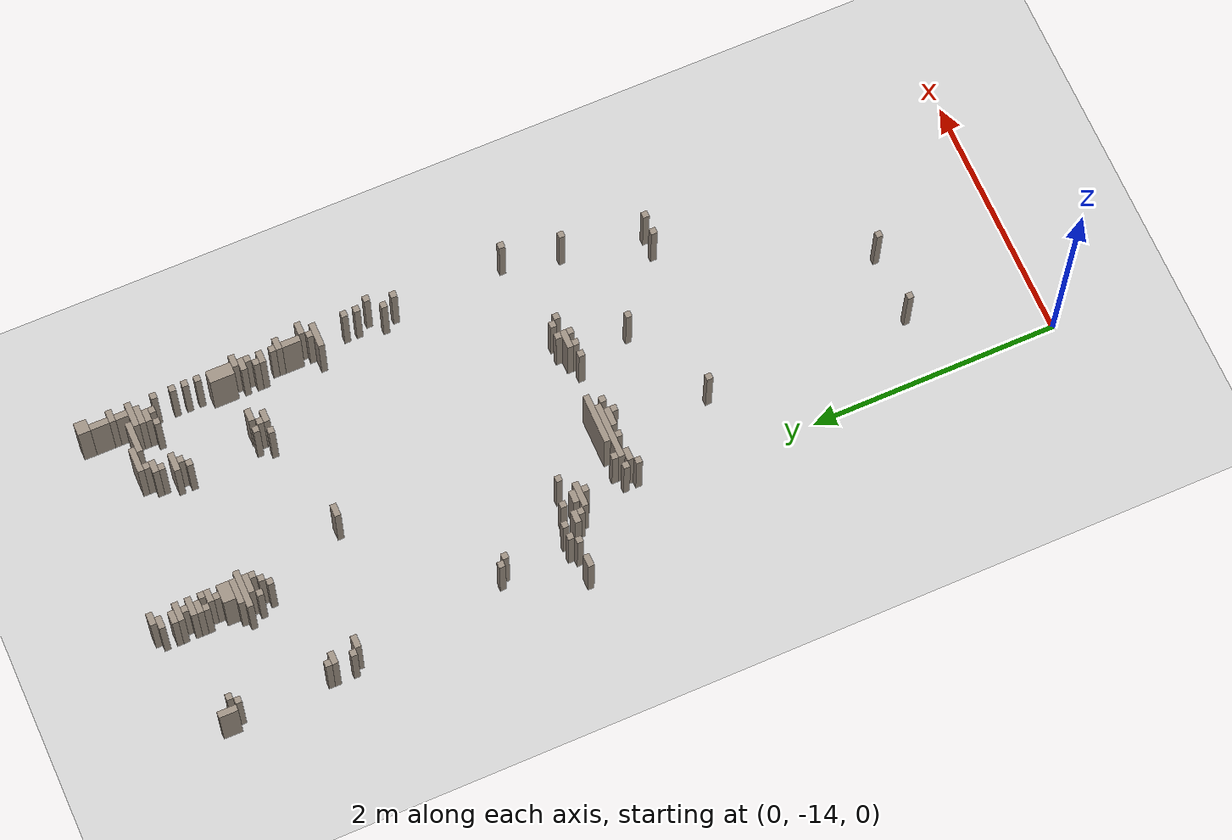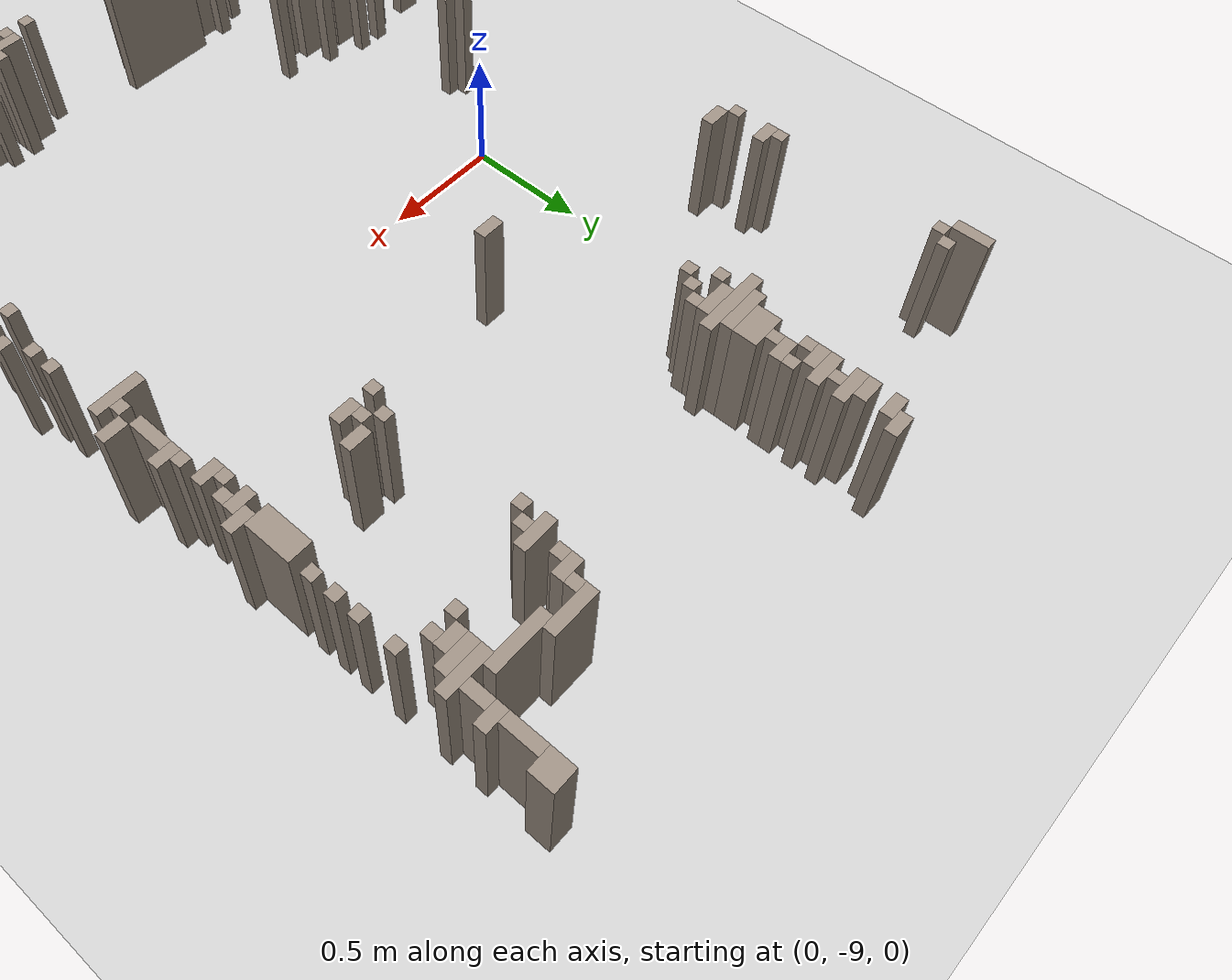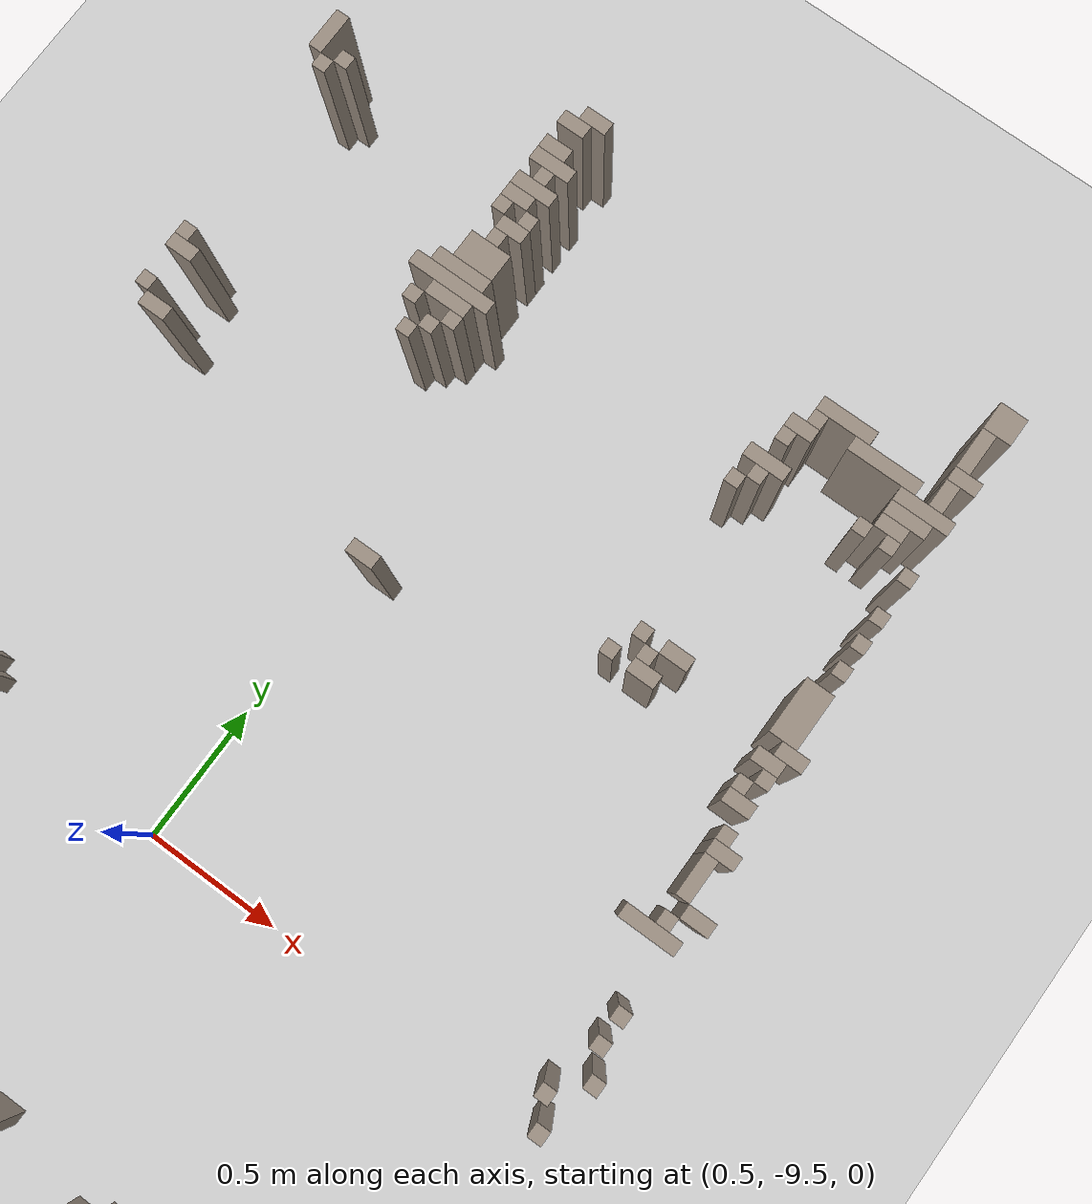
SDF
<sdf version="1.8">
 <world name="sala_real">
  <model name="ground_plane">
   <static>true</static>
   <link name="link">
    <collision name="col">
     <geometry><plane><normal>0 0 1</normal><size>100 100</size></plane></geometry>
    </collision>
    <visual name="vis">
     <geometry><plane><normal>0 0 1</normal><size>100 100</size></plane></geometry>
     <material><ambient>0.8 0.8 0.8 1</ambient><diffuse>0.8 0.8 0.8 1</diffuse></material>
    </visual>
   </link>
  </model>
  <model name="wall_442">
   <static>true</static>
   <pose>0.315 -6.888 0.250 0 0 0</pose>
   <link name="link">
    <collision name="col"><geometry><box><size>0.100 0.050 0.500</size></box></geometry></collision>
    <visual name="vis">
     <geometry><box><size>0.100 0.050 0.500</size></box></geometry>
     <material><ambient>0.6 0.55 0.5 1</ambient><diffuse>0.6 0.55 0.5 1</diffuse></material>
    </visual>
   </link>
  </model>
  <model name="wall_448">
   <static>true</static>
   <pose>0.340 -7.038 0.250 0 0 0</pose>
   <link name="link">
    <collision name="col"><geometry><box><size>0.150 0.050 0.500</size></box></geometry></collision>
    <visual name="vis">
     <geometry><box><size>0.150 0.050 0.500</size></box></geometry>
     <material><ambient>0.6 0.55 0.5 1</ambient><diffuse>0.6 0.55 0.5 1</diffuse></material>
    </visual>
   </link>
  </model>
  <model name="wall_449">
   <static>true</static>
   <pose>1.965 -6.913 0.250 0 0 0</pose>
   <link name="link">
    <collision name="col"><geometry><box><size>0.100 0.100 0.500</size></box></geometry></collision>
    <visual name="vis">
     <geometry><box><size>0.100 0.100 0.500</size></box></geometry>
     <material><ambient>0.6 0.55 0.5 1</ambient><diffuse>0.6 0.55 0.5 1</diffuse></material>
    </visual>
   </link>
  </model>
  <model name="wall_451">
   <static>true</static>
   <pose>0.315 -6.988 0.250 0 0 0</pose>
   <link name="link">
    <collision name="col"><geometry><box><size>0.100 0.050 0.500</size></box></geometry></collision>
    <visual name="vis">
     <geometry><box><size>0.100 0.050 0.500</size></box></geometry>
     <material><ambient>0.6 0.55 0.5 1</ambient><diffuse>0.6 0.55 0.5 1</diffuse></material>
    </visual>
   </link>
  </model>
  <model name="wall_452">
   <static>true</static>
   <pose>1.940 -7.038 0.250 0 0 0</pose>
   <link name="link">
    <collision name="col"><geometry><box><size>0.050 0.150 0.500</size></box></geometry></collision>
    <visual name="vis">
     <geometry><box><size>0.050 0.150 0.500</size></box></geometry>
     <material><ambient>0.6 0.55 0.5 1</ambient><diffuse>0.6 0.55 0.5 1</diffuse></material>
    </visual>
   </link>
  </model>
  <model name="wall_458">
   <static>true</static>
   <pose>0.365 -6.838 0.250 0 0 0</pose>
   <link name="link">
    <collision name="col"><geometry><box><size>0.100 0.050 0.500</size></box></geometry></collision>
    <visual name="vis">
     <geometry><box><size>0.100 0.050 0.500</size></box></geometry>
     <material><ambient>0.6 0.55 0.5 1</ambient><diffuse>0.6 0.55 0.5 1</diffuse></material>
    </visual>
   </link>
  </model>
  <model name="wall_461">
   <static>true</static>
   <pose>0.340 -7.088 0.250 0 0 0</pose>
   <link name="link">
    <collision name="col"><geometry><box><size>0.050 0.050 0.500</size></box></geometry></collision>
    <visual name="vis">
     <geometry><box><size>0.050 0.050 0.500</size></box></geometry>
     <material><ambient>0.6 0.55 0.5 1</ambient><diffuse>0.6 0.55 0.5 1</diffuse></material>
    </visual>
   </link>
  </model>
  <model name="wall_463">
   <static>true</static>
   <pose>0.340 -7.138 0.250 0 0 0</pose>
   <link name="link">
    <collision name="col"><geometry><box><size>0.150 0.050 0.500</size></box></geometry></collision>
    <visual name="vis">
     <geometry><box><size>0.150 0.050 0.500</size></box></geometry>
     <material><ambient>0.6 0.55 0.5 1</ambient><diffuse>0.6 0.55 0.5 1</diffuse></material>
    </visual>
   </link>
  </model>
  <model name="wall_468">
   <static>true</static>
   <pose>1.440 -7.338 0.250 0 0 0</pose>
   <link name="link">
    <collision name="col"><geometry><box><size>0.050 0.050 0.500</size></box></geometry></collision>
    <visual name="vis">
     <geometry><box><size>0.050 0.050 0.500</size></box></geometry>
     <material><ambient>0.6 0.55 0.5 1</ambient><diffuse>0.6 0.55 0.5 1</diffuse></material>
    </visual>
   </link>
  </model>
  <model name="wall_473">
   <static>true</static>
   <pose>0.340 -7.413 0.250 0 0 0</pose>
   <link name="link">
    <collision name="col"><geometry><box><size>0.150 0.100 0.500</size></box></geometry></collision>
    <visual name="vis">
     <geometry><box><size>0.150 0.100 0.500</size></box></geometry>
     <material><ambient>0.6 0.55 0.5 1</ambient><diffuse>0.6 0.55 0.5 1</diffuse></material>
    </visual>
   </link>
  </model>
  <model name="wall_476">
   <static>true</static>
   <pose>0.390 -7.238 0.250 0 0 0</pose>
   <link name="link">
    <collision name="col"><geometry><box><size>0.050 0.050 0.500</size></box></geometry></collision>
    <visual name="vis">
     <geometry><box><size>0.050 0.050 0.500</size></box></geometry>
     <material><ambient>0.6 0.55 0.5 1</ambient><diffuse>0.6 0.55 0.5 1</diffuse></material>
    </visual>
   </link>
  </model>
  <model name="wall_477">
   <static>true</static>
   <pose>1.990 -7.488 0.250 0 0 0</pose>
   <link name="link">
    <collision name="col"><geometry><box><size>0.050 0.050 0.500</size></box></geometry></collision>
    <visual name="vis">
     <geometry><box><size>0.050 0.050 0.500</size></box></geometry>
     <material><ambient>0.6 0.55 0.5 1</ambient><diffuse>0.6 0.55 0.5 1</diffuse></material>
    </visual>
   </link>
  </model>
  <model name="wall_479">
   <static>true</static>
   <pose>0.340 -7.338 0.250 0 0 0</pose>
   <link name="link">
    <collision name="col"><geometry><box><size>0.050 0.050 0.500</size></box></geometry></collision>
    <visual name="vis">
     <geometry><box><size>0.050 0.050 0.500</size></box></geometry>
     <material><ambient>0.6 0.55 0.5 1</ambient><diffuse>0.6 0.55 0.5 1</diffuse></material>
    </visual>
   </link>
  </model>
  <model name="wall_482">
   <static>true</static>
   <pose>0.290 -7.238 0.250 0 0 0</pose>
   <link name="link">
    <collision name="col"><geometry><box><size>0.050 0.050 0.500</size></box></geometry></collision>
    <visual name="vis">
     <geometry><box><size>0.050 0.050 0.500</size></box></geometry>
     <material><ambient>0.6 0.55 0.5 1</ambient><diffuse>0.6 0.55 0.5 1</diffuse></material>
    </visual>
   </link>
  </model>
  <model name="wall_483">
   <static>true</static>
   <pose>1.990 -7.638 0.250 0 0 0</pose>
   <link name="link">
    <collision name="col"><geometry><box><size>0.050 0.050 0.500</size></box></geometry></collision>
    <visual name="vis">
     <geometry><box><size>0.050 0.050 0.500</size></box></geometry>
     <material><ambient>0.6 0.55 0.5 1</ambient><diffuse>0.6 0.55 0.5 1</diffuse></material>
    </visual>
   </link>
  </model>
  <model name="wall_491">
   <static>true</static>
   <pose>1.990 -7.738 0.250 0 0 0</pose>
   <link name="link">
    <collision name="col"><geometry><box><size>0.050 0.050 0.500</size></box></geometry></collision>
    <visual name="vis">
     <geometry><box><size>0.050 0.050 0.500</size></box></geometry>
     <material><ambient>0.6 0.55 0.5 1</ambient><diffuse>0.6 0.55 0.5 1</diffuse></material>
    </visual>
   </link>
  </model>
  <model name="wall_500">
   <static>true</static>
   <pose>-0.460 -7.188 0.250 0 0 0</pose>
   <link name="link">
    <collision name="col"><geometry><box><size>0.050 0.050 0.500</size></box></geometry></collision>
    <visual name="vis">
     <geometry><box><size>0.050 0.050 0.500</size></box></geometry>
     <material><ambient>0.6 0.55 0.5 1</ambient><diffuse>0.6 0.55 0.5 1</diffuse></material>
    </visual>
   </link>
  </model>
  <model name="wall_504">
   <static>true</static>
   <pose>1.965 -7.138 0.250 0 0 0</pose>
   <link name="link">
    <collision name="col"><geometry><box><size>0.100 0.050 0.500</size></box></geometry></collision>
    <visual name="vis">
     <geometry><box><size>0.100 0.050 0.500</size></box></geometry>
     <material><ambient>0.6 0.55 0.5 1</ambient><diffuse>0.6 0.55 0.5 1</diffuse></material>
    </visual>
   </link>
  </model>
  <model name="wall_510">
   <static>true</static>
   <pose>-0.460 -7.888 0.250 0 0 0</pose>
   <link name="link">
    <collision name="col"><geometry><box><size>0.050 0.050 0.500</size></box></geometry></collision>
    <visual name="vis">
     <geometry><box><size>0.050 0.050 0.500</size></box></geometry>
     <material><ambient>0.6 0.55 0.5 1</ambient><diffuse>0.6 0.55 0.5 1</diffuse></material>
    </visual>
   </link>
  </model>
  <model name="wall_511">
   <static>true</static>
   <pose>1.440 -7.488 0.250 0 0 0</pose>
   <link name="link">
    <collision name="col"><geometry><box><size>0.050 0.050 0.500</size></box></geometry></collision>
    <visual name="vis">
     <geometry><box><size>0.050 0.050 0.500</size></box></geometry>
     <material><ambient>0.6 0.55 0.5 1</ambient><diffuse>0.6 0.55 0.5 1</diffuse></material>
    </visual>
   </link>
  </model>
  <model name="wall_513">
   <static>true</static>
   <pose>1.490 -7.238 0.250 0 0 0</pose>
   <link name="link">
    <collision name="col"><geometry><box><size>0.050 0.050 0.500</size></box></geometry></collision>
    <visual name="vis">
     <geometry><box><size>0.050 0.050 0.500</size></box></geometry>
     <material><ambient>0.6 0.55 0.5 1</ambient><diffuse>0.6 0.55 0.5 1</diffuse></material>
    </visual>
   </link>
  </model>
  <model name="wall_517">
   <static>true</static>
   <pose>1.390 -7.538 0.250 0 0 0</pose>
   <link name="link">
    <collision name="col"><geometry><box><size>0.050 0.050 0.500</size></box></geometry></collision>
    <visual name="vis">
     <geometry><box><size>0.050 0.050 0.500</size></box></geometry>
     <material><ambient>0.6 0.55 0.5 1</ambient><diffuse>0.6 0.55 0.5 1</diffuse></material>
    </visual>
   </link>
  </model>
  <model name="wall_519">
   <static>true</static>
   <pose>1.965 -8.013 0.250 0 0 0</pose>
   <link name="link">
    <collision name="col"><geometry><box><size>0.100 0.200 0.500</size></box></geometry></collision>
    <visual name="vis">
     <geometry><box><size>0.100 0.200 0.500</size></box></geometry>
     <material><ambient>0.6 0.55 0.5 1</ambient><diffuse>0.6 0.55 0.5 1</diffuse></material>
    </visual>
   </link>
  </model>
  <model name="wall_521">
   <static>true</static>
   <pose>1.990 -7.838 0.250 0 0 0</pose>
   <link name="link">
    <collision name="col"><geometry><box><size>0.050 0.050 0.500</size></box></geometry></collision>
    <visual name="vis">
     <geometry><box><size>0.050 0.050 0.500</size></box></geometry>
     <material><ambient>0.6 0.55 0.5 1</ambient><diffuse>0.6 0.55 0.5 1</diffuse></material>
    </visual>
   </link>
  </model>
  <model name="wall_523">
   <static>true</static>
   <pose>1.940 -7.213 0.250 0 0 0</pose>
   <link name="link">
    <collision name="col"><geometry><box><size>0.050 0.100 0.500</size></box></geometry></collision>
    <visual name="vis">
     <geometry><box><size>0.050 0.100 0.500</size></box></geometry>
     <material><ambient>0.6 0.55 0.5 1</ambient><diffuse>0.6 0.55 0.5 1</diffuse></material>
    </visual>
   </link>
  </model>
  <model name="wall_525">
   <static>true</static>
   <pose>1.965 -8.188 0.250 0 0 0</pose>
   <link name="link">
    <collision name="col"><geometry><box><size>0.100 0.050 0.500</size></box></geometry></collision>
    <visual name="vis">
     <geometry><box><size>0.100 0.050 0.500</size></box></geometry>
     <material><ambient>0.6 0.55 0.5 1</ambient><diffuse>0.6 0.55 0.5 1</diffuse></material>
    </visual>
   </link>
  </model>
  <model name="wall_530">
   <static>true</static>
   <pose>1.990 -8.238 0.250 0 0 0</pose>
   <link name="link">
    <collision name="col"><geometry><box><size>0.050 0.050 0.500</size></box></geometry></collision>
    <visual name="vis">
     <geometry><box><size>0.050 0.050 0.500</size></box></geometry>
     <material><ambient>0.6 0.55 0.5 1</ambient><diffuse>0.6 0.55 0.5 1</diffuse></material>
    </visual>
   </link>
  </model>
  <model name="wall_534">
   <static>true</static>
   <pose>2.015 -8.138 0.250 0 0 0</pose>
   <link name="link">
    <collision name="col"><geometry><box><size>0.100 0.050 0.500</size></box></geometry></collision>
    <visual name="vis">
     <geometry><box><size>0.100 0.050 0.500</size></box></geometry>
     <material><ambient>0.6 0.55 0.5 1</ambient><diffuse>0.6 0.55 0.5 1</diffuse></material>
    </visual>
   </link>
  </model>
  <model name="wall_536">
   <static>true</static>
   <pose>1.990 -8.438 0.250 0 0 0</pose>
   <link name="link">
    <collision name="col"><geometry><box><size>0.050 0.050 0.500</size></box></geometry></collision>
    <visual name="vis">
     <geometry><box><size>0.050 0.050 0.500</size></box></geometry>
     <material><ambient>0.6 0.55 0.5 1</ambient><diffuse>0.6 0.55 0.5 1</diffuse></material>
    </visual>
   </link>
  </model>
  <model name="wall_544">
   <static>true</static>
   <pose>1.990 -8.588 0.250 0 0 0</pose>
   <link name="link">
    <collision name="col"><geometry><box><size>0.050 0.150 0.500</size></box></geometry></collision>
    <visual name="vis">
     <geometry><box><size>0.050 0.150 0.500</size></box></geometry>
     <material><ambient>0.6 0.55 0.5 1</ambient><diffuse>0.6 0.55 0.5 1</diffuse></material>
    </visual>
   </link>
  </model>
  <model name="wall_552">
   <static>true</static>
   <pose>2.040 -9.038 0.250 0 0 0</pose>
   <link name="link">
    <collision name="col"><geometry><box><size>0.050 0.050 0.500</size></box></geometry></collision>
    <visual name="vis">
     <geometry><box><size>0.050 0.050 0.500</size></box></geometry>
     <material><ambient>0.6 0.55 0.5 1</ambient><diffuse>0.6 0.55 0.5 1</diffuse></material>
    </visual>
   </link>
  </model>
  <model name="wall_557">
   <static>true</static>
   <pose>1.990 -8.738 0.250 0 0 0</pose>
   <link name="link">
    <collision name="col"><geometry><box><size>0.050 0.050 0.500</size></box></geometry></collision>
    <visual name="vis">
     <geometry><box><size>0.050 0.050 0.500</size></box></geometry>
     <material><ambient>0.6 0.55 0.5 1</ambient><diffuse>0.6 0.55 0.5 1</diffuse></material>
    </visual>
   </link>
  </model>
  <model name="wall_558">
   <static>true</static>
   <pose>2.040 -9.138 0.250 0 0 0</pose>
   <link name="link">
    <collision name="col"><geometry><box><size>0.050 0.050 0.500</size></box></geometry></collision>
    <visual name="vis">
     <geometry><box><size>0.050 0.050 0.500</size></box></geometry>
     <material><ambient>0.6 0.55 0.5 1</ambient><diffuse>0.6 0.55 0.5 1</diffuse></material>
    </visual>
   </link>
  </model>
  <model name="wall_559">
   <static>true</static>
   <pose>-0.260 -9.338 0.250 0 0 0</pose>
   <link name="link">
    <collision name="col"><geometry><box><size>0.050 0.050 0.500</size></box></geometry></collision>
    <visual name="vis">
     <geometry><box><size>0.050 0.050 0.500</size></box></geometry>
     <material><ambient>0.6 0.55 0.5 1</ambient><diffuse>0.6 0.55 0.5 1</diffuse></material>
    </visual>
   </link>
  </model>
  <model name="wall_573">
   <static>true</static>
   <pose>2.090 -9.238 0.250 0 0 0</pose>
   <link name="link">
    <collision name="col"><geometry><box><size>0.050 0.050 0.500</size></box></geometry></collision>
    <visual name="vis">
     <geometry><box><size>0.050 0.050 0.500</size></box></geometry>
     <material><ambient>0.6 0.55 0.5 1</ambient><diffuse>0.6 0.55 0.5 1</diffuse></material>
    </visual>
   </link>
  </model>
  <model name="wall_575">
   <static>true</static>
   <pose>0.190 -9.988 0.250 0 0 0</pose>
   <link name="link">
    <collision name="col"><geometry><box><size>0.050 0.050 0.500</size></box></geometry></collision>
    <visual name="vis">
     <geometry><box><size>0.050 0.050 0.500</size></box></geometry>
     <material><ambient>0.6 0.55 0.5 1</ambient><diffuse>0.6 0.55 0.5 1</diffuse></material>
    </visual>
   </link>
  </model>
  <model name="wall_578">
   <static>true</static>
   <pose>1.390 -8.188 0.250 0 0 0</pose>
   <link name="link">
    <collision name="col"><geometry><box><size>0.050 0.050 0.500</size></box></geometry></collision>
    <visual name="vis">
     <geometry><box><size>0.050 0.050 0.500</size></box></geometry>
     <material><ambient>0.6 0.55 0.5 1</ambient><diffuse>0.6 0.55 0.5 1</diffuse></material>
    </visual>
   </link>
  </model>
  <model name="wall_582">
   <static>true</static>
   <pose>0.340 -7.688 0.250 0 0 0</pose>
   <link name="link">
    <collision name="col"><geometry><box><size>0.050 0.050 0.500</size></box></geometry></collision>
    <visual name="vis">
     <geometry><box><size>0.050 0.050 0.500</size></box></geometry>
     <material><ambient>0.6 0.55 0.5 1</ambient><diffuse>0.6 0.55 0.5 1</diffuse></material>
    </visual>
   </link>
  </model>
  <model name="wall_585">
   <static>true</static>
   <pose>1.240 -10.438 0.250 0 0 0</pose>
   <link name="link">
    <collision name="col"><geometry><box><size>0.050 0.050 0.500</size></box></geometry></collision>
    <visual name="vis">
     <geometry><box><size>0.050 0.050 0.500</size></box></geometry>
     <material><ambient>0.6 0.55 0.5 1</ambient><diffuse>0.6 0.55 0.5 1</diffuse></material>
    </visual>
   </link>
  </model>
  <model name="wall_588">
   <static>true</static>
   <pose>0.090 -10.488 0.250 0 0 0</pose>
   <link name="link">
    <collision name="col"><geometry><box><size>0.050 0.050 0.500</size></box></geometry></collision>
    <visual name="vis">
     <geometry><box><size>0.050 0.050 0.500</size></box></geometry>
     <material><ambient>0.6 0.55 0.5 1</ambient><diffuse>0.6 0.55 0.5 1</diffuse></material>
    </visual>
   </link>
  </model>
  <model name="wall_591">
   <static>true</static>
   <pose>1.990 -9.338 0.250 0 0 0</pose>
   <link name="link">
    <collision name="col"><geometry><box><size>0.050 0.050 0.500</size></box></geometry></collision>
    <visual name="vis">
     <geometry><box><size>0.050 0.050 0.500</size></box></geometry>
     <material><ambient>0.6 0.55 0.5 1</ambient><diffuse>0.6 0.55 0.5 1</diffuse></material>
    </visual>
   </link>
  </model>
  <model name="wall_599">
   <static>true</static>
   <pose>1.890 -7.438 0.250 0 0 0</pose>
   <link name="link">
    <collision name="col"><geometry><box><size>0.050 0.050 0.500</size></box></geometry></collision>
    <visual name="vis">
     <geometry><box><size>0.050 0.050 0.500</size></box></geometry>
     <material><ambient>0.6 0.55 0.5 1</ambient><diffuse>0.6 0.55 0.5 1</diffuse></material>
    </visual>
   </link>
  </model>
  <model name="wall_605">
   <static>true</static>
   <pose>0.490 -11.338 0.250 0 0 0</pose>
   <link name="link">
    <collision name="col"><geometry><box><size>0.050 0.050 0.500</size></box></geometry></collision>
    <visual name="vis">
     <geometry><box><size>0.050 0.050 0.500</size></box></geometry>
     <material><ambient>0.6 0.55 0.5 1</ambient><diffuse>0.6 0.55 0.5 1</diffuse></material>
    </visual>
   </link>
  </model>
  <model name="wall_606">
   <static>true</static>
   <pose>1.040 -10.538 0.250 0 0 0</pose>
   <link name="link">
    <collision name="col"><geometry><box><size>0.050 0.050 0.500</size></box></geometry></collision>
    <visual name="vis">
     <geometry><box><size>0.050 0.050 0.500</size></box></geometry>
     <material><ambient>0.6 0.55 0.5 1</ambient><diffuse>0.6 0.55 0.5 1</diffuse></material>
    </visual>
   </link>
  </model>
  <model name="wall_630">
   <static>true</static>
   <pose>0.640 -10.538 0.250 0 0 0</pose>
   <link name="link">
    <collision name="col"><geometry><box><size>0.050 0.050 0.500</size></box></geometry></collision>
    <visual name="vis">
     <geometry><box><size>0.050 0.050 0.500</size></box></geometry>
     <material><ambient>0.6 0.55 0.5 1</ambient><diffuse>0.6 0.55 0.5 1</diffuse></material>
    </visual>
   </link>
  </model>
  <model name="wall_656">
   <static>true</static>
   <pose>1.865 -7.388 0.250 0 0 0</pose>
   <link name="link">
    <collision name="col"><geometry><box><size>0.100 0.050 0.500</size></box></geometry></collision>
    <visual name="vis">
     <geometry><box><size>0.100 0.050 0.500</size></box></geometry>
     <material><ambient>0.6 0.55 0.5 1</ambient><diffuse>0.6 0.55 0.5 1</diffuse></material>
    </visual>
   </link>
  </model>
  <model name="wall_685">
   <static>true</static>
   <pose>1.140 -10.538 0.250 0 0 0</pose>
   <link name="link">
    <collision name="col"><geometry><box><size>0.050 0.050 0.500</size></box></geometry></collision>
    <visual name="vis">
     <geometry><box><size>0.050 0.050 0.500</size></box></geometry>
     <material><ambient>0.6 0.55 0.5 1</ambient><diffuse>0.6 0.55 0.5 1</diffuse></material>
    </visual>
   </link>
  </model>
  <model name="wall_776">
   <static>true</static>
   <pose>0.015 -10.088 0.250 0 0 0</pose>
   <link name="link">
    <collision name="col"><geometry><box><size>0.200 0.050 0.500</size></box></geometry></collision>
    <visual name="vis">
     <geometry><box><size>0.200 0.050 0.500</size></box></geometry>
     <material><ambient>0.6 0.55 0.5 1</ambient><diffuse>0.6 0.55 0.5 1</diffuse></material>
    </visual>
   </link>
  </model>
  <model name="wall_823">
   <static>true</static>
   <pose>0.390 -7.638 0.250 0 0 0</pose>
   <link name="link">
    <collision name="col"><geometry><box><size>0.050 0.050 0.500</size></box></geometry></collision>
    <visual name="vis">
     <geometry><box><size>0.050 0.050 0.500</size></box></geometry>
     <material><ambient>0.6 0.55 0.5 1</ambient><diffuse>0.6 0.55 0.5 1</diffuse></material>
    </visual>
   </link>
  </model>
  <model name="wall_824">
   <static>true</static>
   <pose>0.540 -10.588 0.250 0 0 0</pose>
   <link name="link">
    <collision name="col"><geometry><box><size>0.050 0.050 0.500</size></box></geometry></collision>
    <visual name="vis">
     <geometry><box><size>0.050 0.050 0.500</size></box></geometry>
     <material><ambient>0.6 0.55 0.5 1</ambient><diffuse>0.6 0.55 0.5 1</diffuse></material>
    </visual>
   </link>
  </model>
  <model name="wall_844">
   <static>true</static>
   <pose>0.240 -7.638 0.250 0 0 0</pose>
   <link name="link">
    <collision name="col"><geometry><box><size>0.050 0.050 0.500</size></box></geometry></collision>
    <visual name="vis">
     <geometry><box><size>0.050 0.050 0.500</size></box></geometry>
     <material><ambient>0.6 0.55 0.5 1</ambient><diffuse>0.6 0.55 0.5 1</diffuse></material>
    </visual>
   </link>
  </model>
  <model name="wall_847">
   <static>true</static>
   <pose>0.190 -10.438 0.250 0 0 0</pose>
   <link name="link">
    <collision name="col"><geometry><box><size>0.050 0.050 0.500</size></box></geometry></collision>
    <visual name="vis">
     <geometry><box><size>0.050 0.050 0.500</size></box></geometry>
     <material><ambient>0.6 0.55 0.5 1</ambient><diffuse>0.6 0.55 0.5 1</diffuse></material>
    </visual>
   </link>
  </model>
  <model name="wall_879">
   <static>true</static>
   <pose>0.290 -7.738 0.250 0 0 0</pose>
   <link name="link">
    <collision name="col"><geometry><box><size>0.050 0.050 0.500</size></box></geometry></collision>
    <visual name="vis">
     <geometry><box><size>0.050 0.050 0.500</size></box></geometry>
     <material><ambient>0.6 0.55 0.5 1</ambient><diffuse>0.6 0.55 0.5 1</diffuse></material>
    </visual>
   </link>
  </model>
  <model name="wall_881">
   <static>true</static>
   <pose>-0.485 -9.938 0.250 0 0 0</pose>
   <link name="link">
    <collision name="col"><geometry><box><size>0.100 0.050 0.500</size></box></geometry></collision>
    <visual name="vis">
     <geometry><box><size>0.100 0.050 0.500</size></box></geometry>
     <material><ambient>0.6 0.55 0.5 1</ambient><diffuse>0.6 0.55 0.5 1</diffuse></material>
    </visual>
   </link>
  </model>
  <model name="wall_883">
   <static>true</static>
   <pose>0.340 -7.588 0.250 0 0 0</pose>
   <link name="link">
    <collision name="col"><geometry><box><size>0.150 0.050 0.500</size></box></geometry></collision>
    <visual name="vis">
     <geometry><box><size>0.150 0.050 0.500</size></box></geometry>
     <material><ambient>0.6 0.55 0.5 1</ambient><diffuse>0.6 0.55 0.5 1</diffuse></material>
    </visual>
   </link>
  </model>
  <model name="wall_891">
   <static>true</static>
   <pose>-0.460 -8.088 0.250 0 0 0</pose>
   <link name="link">
    <collision name="col"><geometry><box><size>0.050 0.050 0.500</size></box></geometry></collision>
    <visual name="vis">
     <geometry><box><size>0.050 0.050 0.500</size></box></geometry>
     <material><ambient>0.6 0.55 0.5 1</ambient><diffuse>0.6 0.55 0.5 1</diffuse></material>
    </visual>
   </link>
  </model>
  <model name="wall_893">
   <static>true</static>
   <pose>0.365 -7.288 0.250 0 0 0</pose>
   <link name="link">
    <collision name="col"><geometry><box><size>0.100 0.050 0.500</size></box></geometry></collision>
    <visual name="vis">
     <geometry><box><size>0.100 0.050 0.500</size></box></geometry>
     <material><ambient>0.6 0.55 0.5 1</ambient><diffuse>0.6 0.55 0.5 1</diffuse></material>
    </visual>
   </link>
  </model>
  <model name="wall_895">
   <static>true</static>
   <pose>1.565 -8.088 0.250 0 0 0</pose>
   <link name="link">
    <collision name="col"><geometry><box><size>0.100 0.050 0.500</size></box></geometry></collision>
    <visual name="vis">
     <geometry><box><size>0.100 0.050 0.500</size></box></geometry>
     <material><ambient>0.6 0.55 0.5 1</ambient><diffuse>0.6 0.55 0.5 1</diffuse></material>
    </visual>
   </link>
  </model>
  <model name="wall_901">
   <static>true</static>
   <pose>-0.435 -7.938 0.250 0 0 0</pose>
   <link name="link">
    <collision name="col"><geometry><box><size>0.100 0.050 0.500</size></box></geometry></collision>
    <visual name="vis">
     <geometry><box><size>0.100 0.050 0.500</size></box></geometry>
     <material><ambient>0.6 0.55 0.5 1</ambient><diffuse>0.6 0.55 0.5 1</diffuse></material>
    </visual>
   </link>
  </model>
  <model name="wall_908">
   <static>true</static>
   <pose>2.015 -8.488 0.250 0 0 0</pose>
   <link name="link">
    <collision name="col"><geometry><box><size>0.100 0.050 0.500</size></box></geometry></collision>
    <visual name="vis">
     <geometry><box><size>0.100 0.050 0.500</size></box></geometry>
     <material><ambient>0.6 0.55 0.5 1</ambient><diffuse>0.6 0.55 0.5 1</diffuse></material>
    </visual>
   </link>
  </model>
  <model name="wall_926">
   <static>true</static>
   <pose>1.740 -11.438 0.250 0 0 0</pose>
   <link name="link">
    <collision name="col"><geometry><box><size>0.050 0.050 0.500</size></box></geometry></collision>
    <visual name="vis">
     <geometry><box><size>0.050 0.050 0.500</size></box></geometry>
     <material><ambient>0.6 0.55 0.5 1</ambient><diffuse>0.6 0.55 0.5 1</diffuse></material>
    </visual>
   </link>
  </model>
  <model name="wall_929">
   <static>true</static>
   <pose>-0.310 -9.938 0.250 0 0 0</pose>
   <link name="link">
    <collision name="col"><geometry><box><size>0.050 0.050 0.500</size></box></geometry></collision>
    <visual name="vis">
     <geometry><box><size>0.050 0.050 0.500</size></box></geometry>
     <material><ambient>0.6 0.55 0.5 1</ambient><diffuse>0.6 0.55 0.5 1</diffuse></material>
    </visual>
   </link>
  </model>
  <model name="wall_933">
   <static>true</static>
   <pose>0.340 -10.538 0.250 0 0 0</pose>
   <link name="link">
    <collision name="col"><geometry><box><size>0.050 0.050 0.500</size></box></geometry></collision>
    <visual name="vis">
     <geometry><box><size>0.050 0.050 0.500</size></box></geometry>
     <material><ambient>0.6 0.55 0.5 1</ambient><diffuse>0.6 0.55 0.5 1</diffuse></material>
    </visual>
   </link>
  </model>
  <model name="wall_939">
   <static>true</static>
   <pose>-0.010 -9.938 0.250 0 0 0</pose>
   <link name="link">
    <collision name="col"><geometry><box><size>0.050 0.050 0.500</size></box></geometry></collision>
    <visual name="vis">
     <geometry><box><size>0.050 0.050 0.500</size></box></geometry>
     <material><ambient>0.6 0.55 0.5 1</ambient><diffuse>0.6 0.55 0.5 1</diffuse></material>
    </visual>
   </link>
  </model>
  <model name="wall_942">
   <static>true</static>
   <pose>-0.110 -10.038 0.250 0 0 0</pose>
   <link name="link">
    <collision name="col"><geometry><box><size>0.050 0.050 0.500</size></box></geometry></collision>
    <visual name="vis">
     <geometry><box><size>0.050 0.050 0.500</size></box></geometry>
     <material><ambient>0.6 0.55 0.5 1</ambient><diffuse>0.6 0.55 0.5 1</diffuse></material>
    </visual>
   </link>
  </model>
  <model name="wall_954">
   <static>true</static>
   <pose>2.040 -9.438 0.250 0 0 0</pose>
   <link name="link">
    <collision name="col"><geometry><box><size>0.050 0.050 0.500</size></box></geometry></collision>
    <visual name="vis">
     <geometry><box><size>0.050 0.050 0.500</size></box></geometry>
     <material><ambient>0.6 0.55 0.5 1</ambient><diffuse>0.6 0.55 0.5 1</diffuse></material>
    </visual>
   </link>
  </model>
  <model name="wall_956">
   <static>true</static>
   <pose>-0.160 -9.888 0.250 0 0 0</pose>
   <link name="link">
    <collision name="col"><geometry><box><size>0.050 0.050 0.500</size></box></geometry></collision>
    <visual name="vis">
     <geometry><box><size>0.050 0.050 0.500</size></box></geometry>
     <material><ambient>0.6 0.55 0.5 1</ambient><diffuse>0.6 0.55 0.5 1</diffuse></material>
    </visual>
   </link>
  </model>
  <model name="wall_958">
   <static>true</static>
   <pose>-0.260 -9.888 0.250 0 0 0</pose>
   <link name="link">
    <collision name="col"><geometry><box><size>0.050 0.050 0.500</size></box></geometry></collision>
    <visual name="vis">
     <geometry><box><size>0.050 0.050 0.500</size></box></geometry>
     <material><ambient>0.6 0.55 0.5 1</ambient><diffuse>0.6 0.55 0.5 1</diffuse></material>
    </visual>
   </link>
  </model>
  <model name="wall_964">
   <static>true</static>
   <pose>1.940 -8.288 0.250 0 0 0</pose>
   <link name="link">
    <collision name="col"><geometry><box><size>0.050 0.050 0.500</size></box></geometry></collision>
    <visual name="vis">
     <geometry><box><size>0.050 0.050 0.500</size></box></geometry>
     <material><ambient>0.6 0.55 0.5 1</ambient><diffuse>0.6 0.55 0.5 1</diffuse></material>
    </visual>
   </link>
  </model>
  <model name="wall_965">
   <static>true</static>
   <pose>2.065 -8.688 0.250 0 0 0</pose>
   <link name="link">
    <collision name="col"><geometry><box><size>0.100 0.050 0.500</size></box></geometry></collision>
    <visual name="vis">
     <geometry><box><size>0.100 0.050 0.500</size></box></geometry>
     <material><ambient>0.6 0.55 0.5 1</ambient><diffuse>0.6 0.55 0.5 1</diffuse></material>
    </visual>
   </link>
  </model>
  <model name="wall_967">
   <static>true</static>
   <pose>0.015 -10.038 0.250 0 0 0</pose>
   <link name="link">
    <collision name="col"><geometry><box><size>0.100 0.050 0.500</size></box></geometry></collision>
    <visual name="vis">
     <geometry><box><size>0.100 0.050 0.500</size></box></geometry>
     <material><ambient>0.6 0.55 0.5 1</ambient><diffuse>0.6 0.55 0.5 1</diffuse></material>
    </visual>
   </link>
  </model>
  <model name="wall_971">
   <static>true</static>
   <pose>0.490 -12.988 0.250 0 0 0</pose>
   <link name="link">
    <collision name="col"><geometry><box><size>0.050 0.050 0.500</size></box></geometry></collision>
    <visual name="vis">
     <geometry><box><size>0.050 0.050 0.500</size></box></geometry>
     <material><ambient>0.6 0.55 0.5 1</ambient><diffuse>0.6 0.55 0.5 1</diffuse></material>
    </visual>
   </link>
  </model>
  <model name="wall_975">
   <static>true</static>
   <pose>1.240 -10.538 0.250 0 0 0</pose>
   <link name="link">
    <collision name="col"><geometry><box><size>0.050 0.050 0.500</size></box></geometry></collision>
    <visual name="vis">
     <geometry><box><size>0.050 0.050 0.500</size></box></geometry>
     <material><ambient>0.6 0.55 0.5 1</ambient><diffuse>0.6 0.55 0.5 1</diffuse></material>
    </visual>
   </link>
  </model>
  <model name="wall_977">
   <static>true</static>
   <pose>1.515 -8.188 0.250 0 0 0</pose>
   <link name="link">
    <collision name="col"><geometry><box><size>0.100 0.050 0.500</size></box></geometry></collision>
    <visual name="vis">
     <geometry><box><size>0.100 0.050 0.500</size></box></geometry>
     <material><ambient>0.6 0.55 0.5 1</ambient><diffuse>0.6 0.55 0.5 1</diffuse></material>
    </visual>
   </link>
  </model>
  <model name="wall_979">
   <static>true</static>
   <pose>1.190 -10.988 0.250 0 0 0</pose>
   <link name="link">
    <collision name="col"><geometry><box><size>0.050 0.050 0.500</size></box></geometry></collision>
    <visual name="vis">
     <geometry><box><size>0.050 0.050 0.500</size></box></geometry>
     <material><ambient>0.6 0.55 0.5 1</ambient><diffuse>0.6 0.55 0.5 1</diffuse></material>
    </visual>
   </link>
  </model>
  <model name="wall_1017">
   <static>true</static>
   <pose>1.965 -8.338 0.250 0 0 0</pose>
   <link name="link">
    <collision name="col"><geometry><box><size>0.100 0.050 0.500</size></box></geometry></collision>
    <visual name="vis">
     <geometry><box><size>0.100 0.050 0.500</size></box></geometry>
     <material><ambient>0.6 0.55 0.5 1</ambient><diffuse>0.6 0.55 0.5 1</diffuse></material>
    </visual>
   </link>
  </model>
  <model name="wall_1033">
   <static>true</static>
   <pose>1.990 -10.788 0.250 0 0 0</pose>
   <link name="link">
    <collision name="col"><geometry><box><size>0.050 0.050 0.500</size></box></geometry></collision>
    <visual name="vis">
     <geometry><box><size>0.050 0.050 0.500</size></box></geometry>
     <material><ambient>0.6 0.55 0.5 1</ambient><diffuse>0.6 0.55 0.5 1</diffuse></material>
    </visual>
   </link>
  </model>
  <model name="wall_1035">
   <static>true</static>
   <pose>2.090 -10.338 0.250 0 0 0</pose>
   <link name="link">
    <collision name="col"><geometry><box><size>0.050 0.050 0.500</size></box></geometry></collision>
    <visual name="vis">
     <geometry><box><size>0.050 0.050 0.500</size></box></geometry>
     <material><ambient>0.6 0.55 0.5 1</ambient><diffuse>0.6 0.55 0.5 1</diffuse></material>
    </visual>
   </link>
  </model>
  <model name="wall_1039">
   <static>true</static>
   <pose>0.315 -7.188 0.250 0 0 0</pose>
   <link name="link">
    <collision name="col"><geometry><box><size>0.100 0.050 0.500</size></box></geometry></collision>
    <visual name="vis">
     <geometry><box><size>0.100 0.050 0.500</size></box></geometry>
     <material><ambient>0.6 0.55 0.5 1</ambient><diffuse>0.6 0.55 0.5 1</diffuse></material>
    </visual>
   </link>
  </model>
  <model name="wall_1061">
   <static>true</static>
   <pose>-0.510 -7.088 0.250 0 0 0</pose>
   <link name="link">
    <collision name="col"><geometry><box><size>0.050 0.150 0.500</size></box></geometry></collision>
    <visual name="vis">
     <geometry><box><size>0.050 0.150 0.500</size></box></geometry>
     <material><ambient>0.6 0.55 0.5 1</ambient><diffuse>0.6 0.55 0.5 1</diffuse></material>
    </visual>
   </link>
  </model>
  <model name="wall_1087">
   <static>true</static>
   <pose>0.315 -7.488 0.250 0 0 0</pose>
   <link name="link">
    <collision name="col"><geometry><box><size>0.200 0.050 0.500</size></box></geometry></collision>
    <visual name="vis">
     <geometry><box><size>0.200 0.050 0.500</size></box></geometry>
     <material><ambient>0.6 0.55 0.5 1</ambient><diffuse>0.6 0.55 0.5 1</diffuse></material>
    </visual>
   </link>
  </model>
  <model name="wall_1098">
   <static>true</static>
   <pose>-0.410 -7.138 0.250 0 0 0</pose>
   <link name="link">
    <collision name="col"><geometry><box><size>0.050 0.050 0.500</size></box></geometry></collision>
    <visual name="vis">
     <geometry><box><size>0.050 0.050 0.500</size></box></geometry>
     <material><ambient>0.6 0.55 0.5 1</ambient><diffuse>0.6 0.55 0.5 1</diffuse></material>
    </visual>
   </link>
  </model>
  <model name="wall_1101">
   <static>true</static>
   <pose>1.565 -7.188 0.250 0 0 0</pose>
   <link name="link">
    <collision name="col"><geometry><box><size>0.200 0.050 0.500</size></box></geometry></collision>
    <visual name="vis">
     <geometry><box><size>0.200 0.050 0.500</size></box></geometry>
     <material><ambient>0.6 0.55 0.5 1</ambient><diffuse>0.6 0.55 0.5 1</diffuse></material>
    </visual>
   </link>
  </model>
  <model name="wall_1105">
   <static>true</static>
   <pose>1.490 -8.138 0.250 0 0 0</pose>
   <link name="link">
    <collision name="col"><geometry><box><size>0.050 0.050 0.500</size></box></geometry></collision>
    <visual name="vis">
     <geometry><box><size>0.050 0.050 0.500</size></box></geometry>
     <material><ambient>0.6 0.55 0.5 1</ambient><diffuse>0.6 0.55 0.5 1</diffuse></material>
    </visual>
   </link>
  </model>
  <model name="wall_1106">
   <static>true</static>
   <pose>1.740 -7.238 0.250 0 0 0</pose>
   <link name="link">
    <collision name="col"><geometry><box><size>0.250 0.050 0.500</size></box></geometry></collision>
    <visual name="vis">
     <geometry><box><size>0.250 0.050 0.500</size></box></geometry>
     <material><ambient>0.6 0.55 0.5 1</ambient><diffuse>0.6 0.55 0.5 1</diffuse></material>
    </visual>
   </link>
  </model>
  <model name="wall_1110">
   <static>true</static>
   <pose>1.465 -7.288 0.250 0 0 0</pose>
   <link name="link">
    <collision name="col"><geometry><box><size>0.100 0.050 0.500</size></box></geometry></collision>
    <visual name="vis">
     <geometry><box><size>0.100 0.050 0.500</size></box></geometry>
     <material><ambient>0.6 0.55 0.5 1</ambient><diffuse>0.6 0.55 0.5 1</diffuse></material>
    </visual>
   </link>
  </model>
  <model name="wall_1111">
   <static>true</static>
   <pose>1.915 -7.288 0.250 0 0 0</pose>
   <link name="link">
    <collision name="col"><geometry><box><size>0.200 0.050 0.500</size></box></geometry></collision>
    <visual name="vis">
     <geometry><box><size>0.200 0.050 0.500</size></box></geometry>
     <material><ambient>0.6 0.55 0.5 1</ambient><diffuse>0.6 0.55 0.5 1</diffuse></material>
    </visual>
   </link>
  </model>
  <model name="wall_1115">
   <static>true</static>
   <pose>1.440 -8.088 0.250 0 0 0</pose>
   <link name="link">
    <collision name="col"><geometry><box><size>0.050 0.050 0.500</size></box></geometry></collision>
    <visual name="vis">
     <geometry><box><size>0.050 0.050 0.500</size></box></geometry>
     <material><ambient>0.6 0.55 0.5 1</ambient><diffuse>0.6 0.55 0.5 1</diffuse></material>
    </visual>
   </link>
  </model>
  <model name="wall_1116">
   <static>true</static>
   <pose>1.890 -7.338 0.250 0 0 0</pose>
   <link name="link">
    <collision name="col"><geometry><box><size>0.150 0.050 0.500</size></box></geometry></collision>
    <visual name="vis">
     <geometry><box><size>0.150 0.050 0.500</size></box></geometry>
     <material><ambient>0.6 0.55 0.5 1</ambient><diffuse>0.6 0.55 0.5 1</diffuse></material>
    </visual>
   </link>
  </model>
  <model name="wall_1119">
   <static>true</static>
   <pose>1.440 -7.438 0.250 0 0 0</pose>
   <link name="link">
    <collision name="col"><geometry><box><size>0.150 0.050 0.500</size></box></geometry></collision>
    <visual name="vis">
     <geometry><box><size>0.150 0.050 0.500</size></box></geometry>
     <material><ambient>0.6 0.55 0.5 1</ambient><diffuse>0.6 0.55 0.5 1</diffuse></material>
    </visual>
   </link>
  </model>
  <model name="wall_1120">
   <static>true</static>
   <pose>1.790 -7.438 0.250 0 0 0</pose>
   <link name="link">
    <collision name="col"><geometry><box><size>0.050 0.050 0.500</size></box></geometry></collision>
    <visual name="vis">
     <geometry><box><size>0.050 0.050 0.500</size></box></geometry>
     <material><ambient>0.6 0.55 0.5 1</ambient><diffuse>0.6 0.55 0.5 1</diffuse></material>
    </visual>
   </link>
  </model>
  <model name="wall_1121">
   <static>true</static>
   <pose>1.890 -11.438 0.250 0 0 0</pose>
   <link name="link">
    <collision name="col"><geometry><box><size>0.050 0.050 0.500</size></box></geometry></collision>
    <visual name="vis">
     <geometry><box><size>0.050 0.050 0.500</size></box></geometry>
     <material><ambient>0.6 0.55 0.5 1</ambient><diffuse>0.6 0.55 0.5 1</diffuse></material>
    </visual>
   </link>
  </model>
  <model name="wall_1126">
   <static>true</static>
   <pose>0.315 -7.538 0.250 0 0 0</pose>
   <link name="link">
    <collision name="col"><geometry><box><size>0.300 0.050 0.500</size></box></geometry></collision>
    <visual name="vis">
     <geometry><box><size>0.300 0.050 0.500</size></box></geometry>
     <material><ambient>0.6 0.55 0.5 1</ambient><diffuse>0.6 0.55 0.5 1</diffuse></material>
    </visual>
   </link>
  </model>
  <model name="wall_1127">
   <static>true</static>
   <pose>1.390 -10.488 0.250 0 0 0</pose>
   <link name="link">
    <collision name="col"><geometry><box><size>0.050 0.050 0.500</size></box></geometry></collision>
    <visual name="vis">
     <geometry><box><size>0.050 0.050 0.500</size></box></geometry>
     <material><ambient>0.6 0.55 0.5 1</ambient><diffuse>0.6 0.55 0.5 1</diffuse></material>
    </visual>
   </link>
  </model>
  <model name="wall_1150">
   <static>true</static>
   <pose>-0.385 -8.138 0.250 0 0 0</pose>
   <link name="link">
    <collision name="col"><geometry><box><size>0.100 0.050 0.500</size></box></geometry></collision>
    <visual name="vis">
     <geometry><box><size>0.100 0.050 0.500</size></box></geometry>
     <material><ambient>0.6 0.55 0.5 1</ambient><diffuse>0.6 0.55 0.5 1</diffuse></material>
    </visual>
   </link>
  </model>
  <model name="wall_1155">
   <static>true</static>
   <pose>0.615 -8.388 0.250 0 0 0</pose>
   <link name="link">
    <collision name="col"><geometry><box><size>0.100 0.050 0.500</size></box></geometry></collision>
    <visual name="vis">
     <geometry><box><size>0.100 0.050 0.500</size></box></geometry>
     <material><ambient>0.6 0.55 0.5 1</ambient><diffuse>0.6 0.55 0.5 1</diffuse></material>
    </visual>
   </link>
  </model>
  <model name="wall_1165">
   <static>true</static>
   <pose>1.965 -8.788 0.250 0 0 0</pose>
   <link name="link">
    <collision name="col"><geometry><box><size>0.200 0.050 0.500</size></box></geometry></collision>
    <visual name="vis">
     <geometry><box><size>0.200 0.050 0.500</size></box></geometry>
     <material><ambient>0.6 0.55 0.5 1</ambient><diffuse>0.6 0.55 0.5 1</diffuse></material>
    </visual>
   </link>
  </model>
  <model name="wall_1175">
   <static>true</static>
   <pose>-0.210 -9.388 0.250 0 0 0</pose>
   <link name="link">
    <collision name="col"><geometry><box><size>0.050 0.050 0.500</size></box></geometry></collision>
    <visual name="vis">
     <geometry><box><size>0.050 0.050 0.500</size></box></geometry>
     <material><ambient>0.6 0.55 0.5 1</ambient><diffuse>0.6 0.55 0.5 1</diffuse></material>
    </visual>
   </link>
  </model>
  <model name="wall_1176">
   <static>true</static>
   <pose>-0.135 -9.988 0.250 0 0 0</pose>
   <link name="link">
    <collision name="col"><geometry><box><size>0.100 0.050 0.500</size></box></geometry></collision>
    <visual name="vis">
     <geometry><box><size>0.100 0.050 0.500</size></box></geometry>
     <material><ambient>0.6 0.55 0.5 1</ambient><diffuse>0.6 0.55 0.5 1</diffuse></material>
    </visual>
   </link>
  </model>
  <model name="wall_1178">
   <static>true</static>
   <pose>0.040 -10.138 0.250 0 0 0</pose>
   <link name="link">
    <collision name="col"><geometry><box><size>0.050 0.050 0.500</size></box></geometry></collision>
    <visual name="vis">
     <geometry><box><size>0.050 0.050 0.500</size></box></geometry>
     <material><ambient>0.6 0.55 0.5 1</ambient><diffuse>0.6 0.55 0.5 1</diffuse></material>
    </visual>
   </link>
  </model>
  <model name="wall_1182">
   <static>true</static>
   <pose>0.515 -10.438 0.250 0 0 0</pose>
   <link name="link">
    <collision name="col"><geometry><box><size>0.400 0.050 0.500</size></box></geometry></collision>
    <visual name="vis">
     <geometry><box><size>0.400 0.050 0.500</size></box></geometry>
     <material><ambient>0.6 0.55 0.5 1</ambient><diffuse>0.6 0.55 0.5 1</diffuse></material>
    </visual>
   </link>
  </model>
  <model name="wall_1183">
   <static>true</static>
   <pose>1.340 -10.438 0.250 0 0 0</pose>
   <link name="link">
    <collision name="col"><geometry><box><size>0.050 0.050 0.500</size></box></geometry></collision>
    <visual name="vis">
     <geometry><box><size>0.050 0.050 0.500</size></box></geometry>
     <material><ambient>0.6 0.55 0.5 1</ambient><diffuse>0.6 0.55 0.5 1</diffuse></material>
    </visual>
   </link>
  </model>
  <model name="wall_1185">
   <static>true</static>
   <pose>0.090 -10.588 0.250 0 0 0</pose>
   <link name="link">
    <collision name="col"><geometry><box><size>0.050 0.050 0.500</size></box></geometry></collision>
    <visual name="vis">
     <geometry><box><size>0.050 0.050 0.500</size></box></geometry>
     <material><ambient>0.6 0.55 0.5 1</ambient><diffuse>0.6 0.55 0.5 1</diffuse></material>
    </visual>
   </link>
  </model>
  <model name="wall_1186">
   <static>true</static>
   <pose>0.390 -10.488 0.250 0 0 0</pose>
   <link name="link">
    <collision name="col"><geometry><box><size>0.450 0.050 0.500</size></box></geometry></collision>
    <visual name="vis">
     <geometry><box><size>0.450 0.050 0.500</size></box></geometry>
     <material><ambient>0.6 0.55 0.5 1</ambient><diffuse>0.6 0.55 0.5 1</diffuse></material>
    </visual>
   </link>
  </model>
  <model name="wall_1187">
   <static>true</static>
   <pose>1.190 -10.488 0.250 0 0 0</pose>
   <link name="link">
    <collision name="col"><geometry><box><size>0.150 0.050 0.500</size></box></geometry></collision>
    <visual name="vis">
     <geometry><box><size>0.150 0.050 0.500</size></box></geometry>
     <material><ambient>0.6 0.55 0.5 1</ambient><diffuse>0.6 0.55 0.5 1</diffuse></material>
    </visual>
   </link>
  </model>
  <model name="wall_1190">
   <static>true</static>
   <pose>0.165 -10.538 0.250 0 0 0</pose>
   <link name="link">
    <collision name="col"><geometry><box><size>0.100 0.050 0.500</size></box></geometry></collision>
    <visual name="vis">
     <geometry><box><size>0.100 0.050 0.500</size></box></geometry>
     <material><ambient>0.6 0.55 0.5 1</ambient><diffuse>0.6 0.55 0.5 1</diffuse></material>
    </visual>
   </link>
  </model>
  <model name="wall_1191">
   <static>true</static>
   <pose>0.490 -10.538 0.250 0 0 0</pose>
   <link name="link">
    <collision name="col"><geometry><box><size>0.150 0.050 0.500</size></box></geometry></collision>
    <visual name="vis">
     <geometry><box><size>0.150 0.050 0.500</size></box></geometry>
     <material><ambient>0.6 0.55 0.5 1</ambient><diffuse>0.6 0.55 0.5 1</diffuse></material>
    </visual>
   </link>
  </model>
  <model name="wall_1192">
   <static>true</static>
   <pose>1.040 -12.988 0.250 0 0 0</pose>
   <link name="link">
    <collision name="col"><geometry><box><size>0.050 0.050 0.500</size></box></geometry></collision>
    <visual name="vis">
     <geometry><box><size>0.050 0.050 0.500</size></box></geometry>
     <material><ambient>0.6 0.55 0.5 1</ambient><diffuse>0.6 0.55 0.5 1</diffuse></material>
    </visual>
   </link>
  </model>
 </world>
</sdf>
